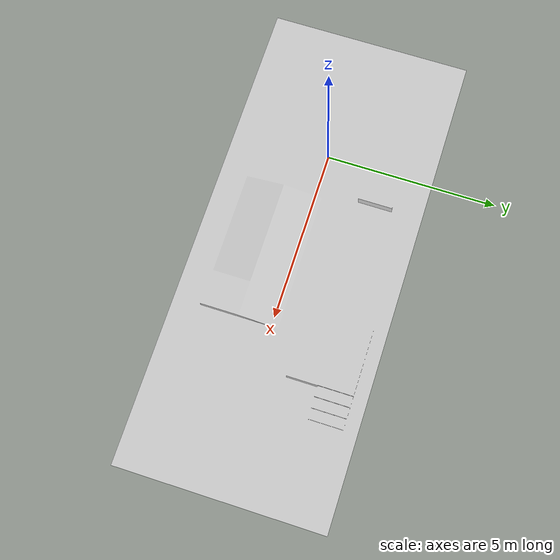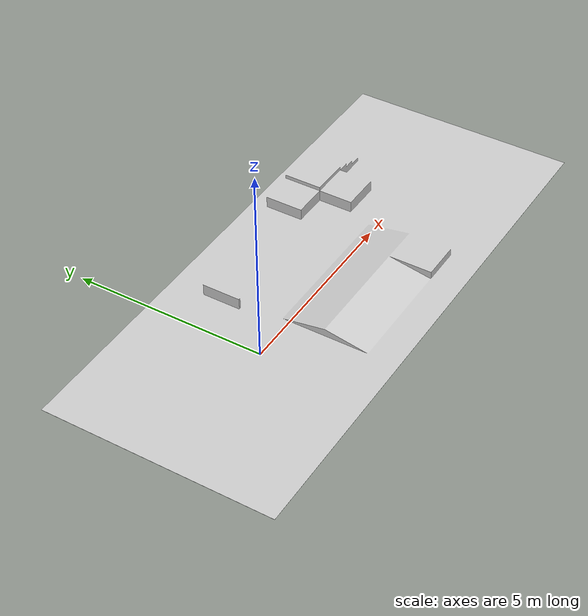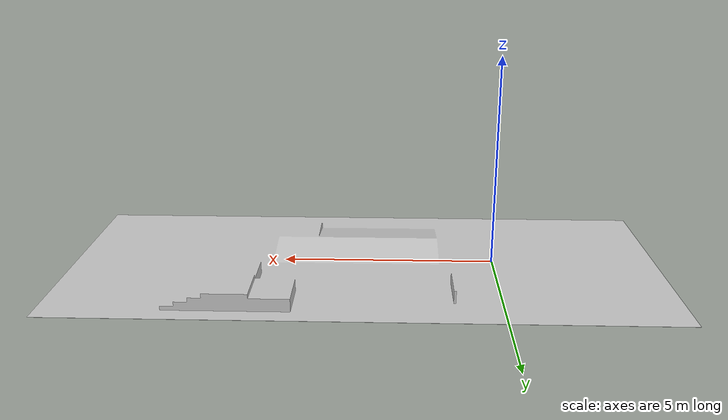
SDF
<?xml version="1.0" ?>
<sdf version="1.7">
  <model name="sw_scene">
    <!-- STEP 场景模型（局部物体） -->
    <static>true</static>
    <pose>0 0 0 0 0 0</pose>

    <link name="scene_link">
      <!-- 碰撞 -->
      <collision name="collision">
        <geometry>
          <mesh>
            <uri>scene2.stl</uri>
            <scale>0.001 0.001 0.001</scale>
          </mesh>
        </geometry>
      </collision>

      <!-- 视觉 -->
      <visual name="visual">
        <material>
          <ambient>0.8 0.8 0.8 1</ambient>
          <diffuse>0.8 0.8 0.8 1</diffuse>
          <specular>0.2 0.2 0.2 1</specular>
        </material>
        <geometry>
          <mesh>
            <uri>scene2.stl</uri>
            <scale>0.001 0.001 0.001</scale>
          </mesh>
        </geometry>
      </visual>
    </link>
  </model>
</sdf>
